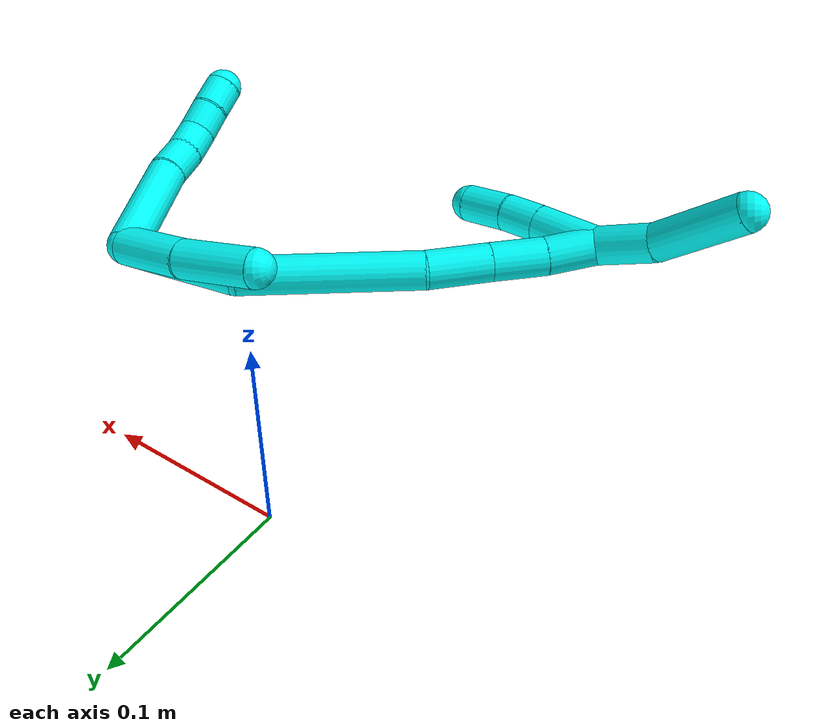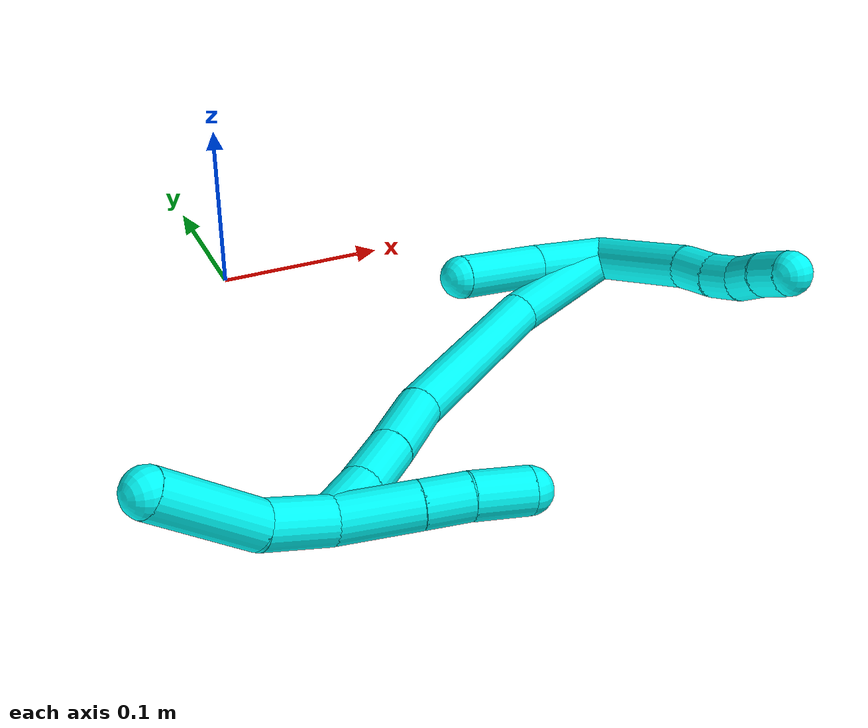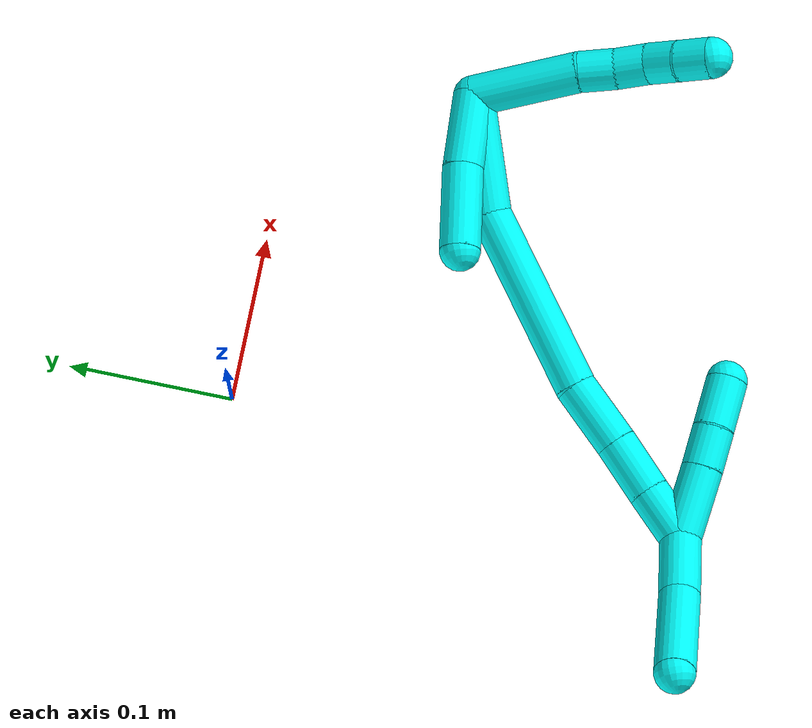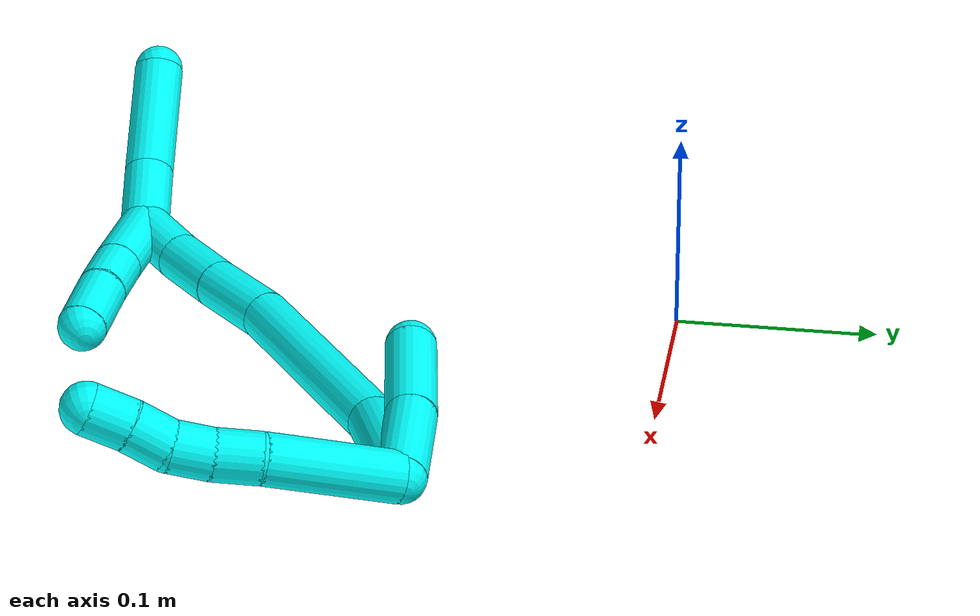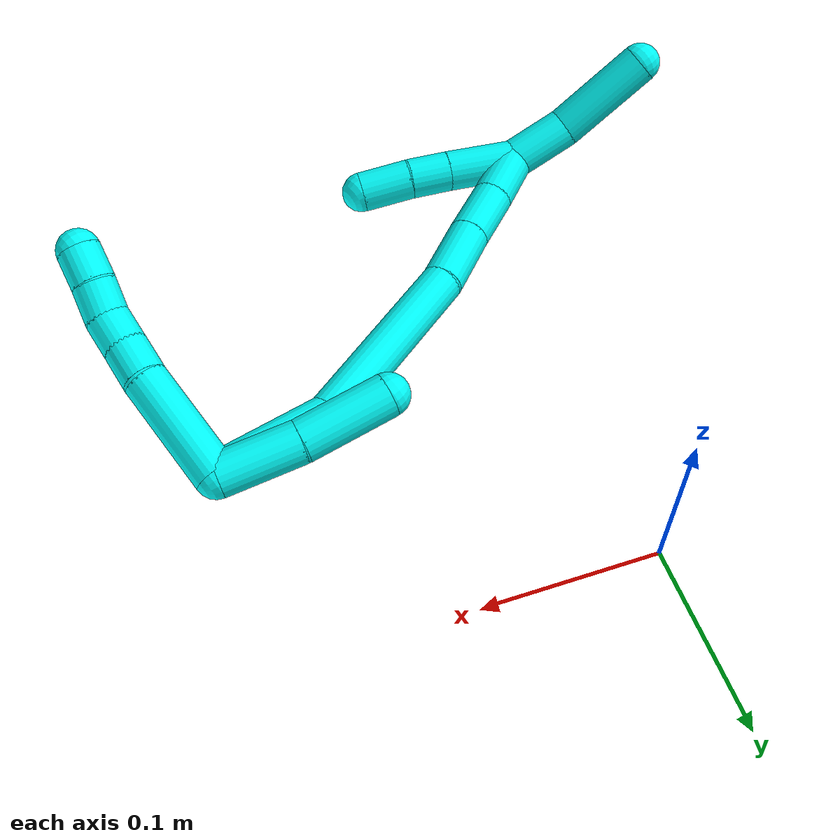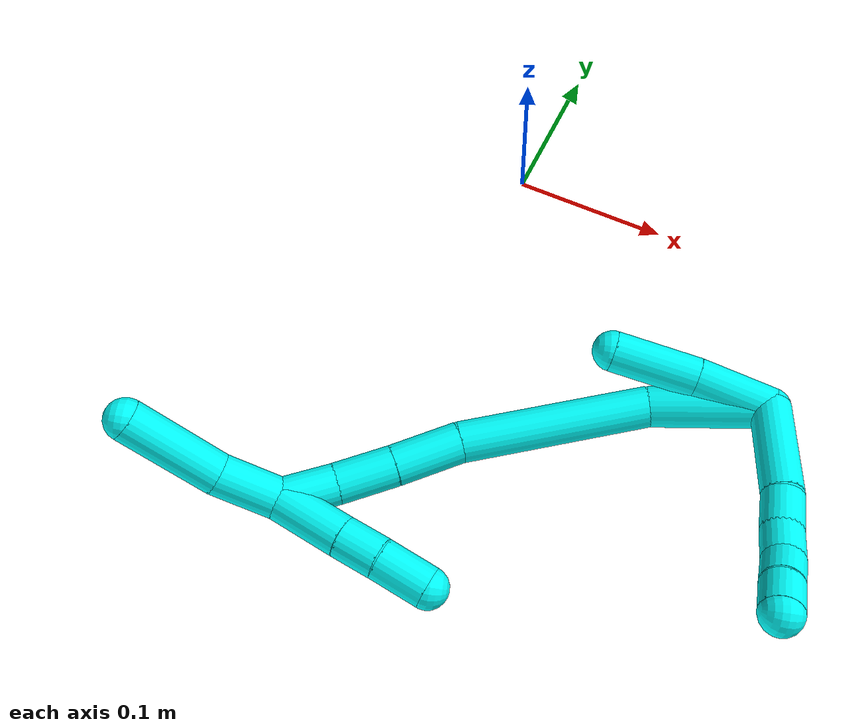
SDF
<sdf version="1.7">
 <world name="default">
  <model name="3">
   <static>0</static>
   <link name="3">
    <collision name="collision-cylinder-e_1_2_8">
     <pose>0.032982 -0.001818 0.000943 1.09223 1.50877 1.03794</pose>
     <geometry><cylinder><radius>0.0125</radius><length>0.066092</length></cylinder></geometry>
     <surface>
      <friction><ode><mu>1.16</mu><mu2>1.16</mu2><slip1>0</slip1><slip2>0</slip2></ode></friction>
      <contact><ode><kp>1e+06</kp><kd>1</kd><max_vel>0</max_vel><min_depth>0.001</min_depth></ode></contact>
     </surface>
    </collision>
    <visual name="visual-cylinder-e_1_2_8">
     <pose>0.032982 -0.001818 0.000943 1.09223 1.50877 1.03794</pose>
     <geometry><cylinder><radius>0.0125</radius><length>0.066092</length></cylinder></geometry>
     <material><ambient>0.003922 1 0.996078 1</ambient></material>
    </visual>
    <collision name="collision-cylinder-e_2_8_9">
     <pose>0.077012 -0.005782 0.003222 1.0141 1.34597 0.833697</pose>
     <geometry><cylinder><radius>0.0125</radius><length>0.022666</length></cylinder></geometry>
     <surface>
      <friction><ode><mu>1.16</mu><mu2>1.16</mu2><slip1>0</slip1><slip2>0</slip2></ode></friction>
      <contact><ode><kp>1e+06</kp><kd>1</kd><max_vel>0</max_vel><min_depth>0.001</min_depth></ode></contact>
     </surface>
    </collision>
    <visual name="visual-cylinder-e_2_8_9">
     <pose>0.077012 -0.005782 0.003222 1.0141 1.34597 0.833697</pose>
     <geometry><cylinder><radius>0.0125</radius><length>0.022666</length></cylinder></geometry>
     <material><ambient>0.003922 1 0.996078 1</ambient></material>
    </visual>
    <collision name="collision-cylinder-e_3_9_10">
     <pose>0.098155 -0.008331 0.005646 0.355131 1.4562 0.317281</pose>
     <geometry><cylinder><radius>0.0125</radius><length>0.020324</length></cylinder></geometry>
     <surface>
      <friction><ode><mu>1.16</mu><mu2>1.16</mu2><slip1>0</slip1><slip2>0</slip2></ode></friction>
      <contact><ode><kp>1e+06</kp><kd>1</kd><max_vel>0</max_vel><min_depth>0.001</min_depth></ode></contact>
     </surface>
    </collision>
    <visual name="visual-cylinder-e_3_9_10">
     <pose>0.098155 -0.008331 0.005646 0.355131 1.4562 0.317281</pose>
     <geometry><cylinder><radius>0.0125</radius><length>0.020324</length></cylinder></geometry>
     <material><ambient>0.003922 1 0.996078 1</ambient></material>
    </visual>
    <collision name="collision-cylinder-e_4_10_11">
     <pose>0.117758 -0.00684 0.00939 -0.619847 1.2403 -0.449664</pose>
     <geometry><cylinder><radius>0.0125</radius><length>0.020102</length></cylinder></geometry>
     <surface>
      <friction><ode><mu>1.16</mu><mu2>1.16</mu2><slip1>0</slip1><slip2>0</slip2></ode></friction>
      <contact><ode><kp>1e+06</kp><kd>1</kd><max_vel>0</max_vel><min_depth>0.001</min_depth></ode></contact>
     </surface>
    </collision>
    <visual name="visual-cylinder-e_4_10_11">
     <pose>0.117758 -0.00684 0.00939 -0.619847 1.2403 -0.449664</pose>
     <geometry><cylinder><radius>0.0125</radius><length>0.020102</length></cylinder></geometry>
     <material><ambient>0.003922 1 0.996078 1</ambient></material>
    </visual>
    <collision name="collision-cylinder-e_5_11_6">
     <pose>0.137368 -0.003937 0.014334 -0.415122 1.32813 -0.326701</pose>
     <geometry><cylinder><radius>0.0125</radius><length>0.020817</length></cylinder></geometry>
     <surface>
      <friction><ode><mu>1.16</mu><mu2>1.16</mu2><slip1>0</slip1><slip2>0</slip2></ode></friction>
      <contact><ode><kp>1e+06</kp><kd>1</kd><max_vel>0</max_vel><min_depth>0.001</min_depth></ode></contact>
     </surface>
    </collision>
    <visual name="visual-cylinder-e_5_11_6">
     <pose>0.137368 -0.003937 0.014334 -0.415122 1.32813 -0.326701</pose>
     <geometry><cylinder><radius>0.0125</radius><length>0.020817</length></cylinder></geometry>
     <material><ambient>0.003922 1 0.996078 1</ambient></material>
    </visual>
    <collision name="collision-cylinder-e_1_2_12">
     <pose>-0.006569 0.001173 0.022726 -0.051575 -0.281016 0.007296</pose>
     <geometry><cylinder><radius>0.0125</radius><length>0.04737</length></cylinder></geometry>
     <surface>
      <friction><ode><mu>1.16</mu><mu2>1.16</mu2><slip1>0</slip1><slip2>0</slip2></ode></friction>
      <contact><ode><kp>1e+06</kp><kd>1</kd><max_vel>0</max_vel><min_depth>0.001</min_depth></ode></contact>
     </surface>
    </collision>
    <visual name="visual-cylinder-e_1_2_12">
     <pose>-0.006569 0.001173 0.022726 -0.051575 -0.281016 0.007296</pose>
     <geometry><cylinder><radius>0.0125</radius><length>0.04737</length></cylinder></geometry>
     <material><ambient>0.003922 1 0.996078 1</ambient></material>
    </visual>
    <collision name="collision-cylinder-e_2_12_5">
     <pose>-0.017706 0.003368 0.071347 -0.039444 -0.174494 0.003451</pose>
     <geometry><cylinder><radius>0.0125</radius><length>0.05263</length></cylinder></geometry>
     <surface>
      <friction><ode><mu>1.16</mu><mu2>1.16</mu2><slip1>0</slip1><slip2>0</slip2></ode></friction>
      <contact><ode><kp>1e+06</kp><kd>1</kd><max_vel>0</max_vel><min_depth>0.001</min_depth></ode></contact>
     </surface>
    </collision>
    <visual name="visual-cylinder-e_2_12_5">
     <pose>-0.017706 0.003368 0.071347 -0.039444 -0.174494 0.003451</pose>
     <geometry><cylinder><radius>0.0125</radius><length>0.05263</length></cylinder></geometry>
     <material><ambient>0.003922 1 0.996078 1</ambient></material>
    </visual>
    <collision name="collision-cylinder-e_1_2_13">
     <pose>-0.003539 -0.010922 0.034473 0.306814 -0.097561 -0.015097</pose>
     <geometry><cylinder><radius>0.0125</radius><length>0.072668</length></cylinder></geometry>
     <surface>
      <friction><ode><mu>1.16</mu><mu2>1.16</mu2><slip1>0</slip1><slip2>0</slip2></ode></friction>
      <contact><ode><kp>1e+06</kp><kd>1</kd><max_vel>0</max_vel><min_depth>0.001</min_depth></ode></contact>
     </surface>
    </collision>
    <visual name="visual-cylinder-e_1_2_13">
     <pose>-0.003539 -0.010922 0.034473 0.306814 -0.097561 -0.015097</pose>
     <geometry><cylinder><radius>0.0125</radius><length>0.072668</length></cylinder></geometry>
     <material><ambient>0.003922 1 0.996078 1</ambient></material>
    </visual>
    <collision name="collision-cylinder-e_2_13_14">
     <pose>0.00644 -0.036147 0.123973 0.25431 0.233435 0.029978</pose>
     <geometry><cylinder><radius>0.0125</radius><length>0.116883</length></cylinder></geometry>
     <surface>
      <friction><ode><mu>1.16</mu><mu2>1.16</mu2><slip1>0</slip1><slip2>0</slip2></ode></friction>
      <contact><ode><kp>1e+06</kp><kd>1</kd><max_vel>0</max_vel><min_depth>0.001</min_depth></ode></contact>
     </surface>
    </collision>
    <visual name="visual-cylinder-e_2_13_14">
     <pose>0.00644 -0.036147 0.123973 0.25431 0.233435 0.029978</pose>
     <geometry><cylinder><radius>0.0125</radius><length>0.116883</length></cylinder></geometry>
     <material><ambient>0.003922 1 0.996078 1</ambient></material>
    </visual>
    <collision name="collision-cylinder-e_3_14_15">
     <pose>0.02785 -0.056363 0.197231 0.31362 0.390559 0.062527</pose>
     <geometry><cylinder><radius>0.0125</radius><length>0.041451</length></cylinder></geometry>
     <surface>
      <friction><ode><mu>1.16</mu><mu2>1.16</mu2><slip1>0</slip1><slip2>0</slip2></ode></friction>
      <contact><ode><kp>1e+06</kp><kd>1</kd><max_vel>0</max_vel><min_depth>0.001</min_depth></ode></contact>
     </surface>
    </collision>
    <visual name="visual-cylinder-e_3_14_15">
     <pose>0.02785 -0.056363 0.197231 0.31362 0.390559 0.062527</pose>
     <geometry><cylinder><radius>0.0125</radius><length>0.041451</length></cylinder></geometry>
     <material><ambient>0.003922 1 0.996078 1</ambient></material>
    </visual>
    <collision name="collision-cylinder-e_4_15_16">
     <pose>0.041991 -0.067063 0.231452 0.290897 0.35832 0.053044</pose>
     <geometry><cylinder><radius>0.0125</radius><length>0.035648</length></cylinder></geometry>
     <surface>
      <friction><ode><mu>1.16</mu><mu2>1.16</mu2><slip1>0</slip1><slip2>0</slip2></ode></friction>
      <contact><ode><kp>1e+06</kp><kd>1</kd><max_vel>0</max_vel><min_depth>0.001</min_depth></ode></contact>
     </surface>
    </collision>
    <visual name="visual-cylinder-e_4_15_16">
     <pose>0.041991 -0.067063 0.231452 0.290897 0.35832 0.053044</pose>
     <geometry><cylinder><radius>0.0125</radius><length>0.035648</length></cylinder></geometry>
     <material><ambient>0.003922 1 0.996078 1</ambient></material>
    </visual>
    <collision name="collision-cylinder-e_5_16_1">
     <pose>0.054684 -0.074651 0.262565 0.183095 0.396648 0.036895</pose>
     <geometry><cylinder><radius>0.0125</radius><length>0.033349</length></cylinder></geometry>
     <surface>
      <friction><ode><mu>1.16</mu><mu2>1.16</mu2><slip1>0</slip1><slip2>0</slip2></ode></friction>
      <contact><ode><kp>1e+06</kp><kd>1</kd><max_vel>0</max_vel><min_depth>0.001</min_depth></ode></contact>
     </surface>
    </collision>
    <visual name="visual-cylinder-e_5_16_1">
     <pose>0.054684 -0.074651 0.262565 0.183095 0.396648 0.036895</pose>
     <geometry><cylinder><radius>0.0125</radius><length>0.033349</length></cylinder></geometry>
     <material><ambient>0.003922 1 0.996078 1</ambient></material>
    </visual>
    <collision name="collision-cylinder-e_1_1_17">
     <pose>0.058762 -0.073471 0.296435 -0.209235 -0.122711 0.012901</pose>
     <geometry><cylinder><radius>0.0125</radius><length>0.038619</length></cylinder></geometry>
     <surface>
      <friction><ode><mu>1.16</mu><mu2>1.16</mu2><slip1>0</slip1><slip2>0</slip2></ode></friction>
      <contact><ode><kp>1e+06</kp><kd>1</kd><max_vel>0</max_vel><min_depth>0.001</min_depth></ode></contact>
     </surface>
    </collision>
    <visual name="visual-cylinder-e_1_1_17">
     <pose>0.058762 -0.073471 0.296435 -0.209235 -0.122711 0.012901</pose>
     <geometry><cylinder><radius>0.0125</radius><length>0.038619</length></cylinder></geometry>
     <material><ambient>0.003922 1 0.996078 1</ambient></material>
    </visual>
    <collision name="collision-cylinder-e_2_17_4">
     <pose>0.054858 -0.054536 0.341937 -0.509652 -0.050218 0.013084</pose>
     <geometry><cylinder><radius>0.0125</radius><length>0.061381</length></cylinder></geometry>
     <surface>
      <friction><ode><mu>1.16</mu><mu2>1.16</mu2><slip1>0</slip1><slip2>0</slip2></ode></friction>
      <contact><ode><kp>1e+06</kp><kd>1</kd><max_vel>0</max_vel><min_depth>0.001</min_depth></ode></contact>
     </surface>
    </collision>
    <visual name="visual-cylinder-e_2_17_4">
     <pose>0.054858 -0.054536 0.341937 -0.509652 -0.050218 0.013084</pose>
     <geometry><cylinder><radius>0.0125</radius><length>0.061381</length></cylinder></geometry>
     <material><ambient>0.003922 1 0.996078 1</ambient></material>
    </visual>
    <collision name="collision-cylinder-e_1_1_18">
     <pose>0.071035 -0.077814 0.258411 3.12275 0.474739 3.06376</pose>
     <geometry><cylinder><radius>0.0125</radius><length>0.043356</length></cylinder></geometry>
     <surface>
      <friction><ode><mu>1.16</mu><mu2>1.16</mu2><slip1>0</slip1><slip2>0</slip2></ode></friction>
      <contact><ode><kp>1e+06</kp><kd>1</kd><max_vel>0</max_vel><min_depth>0.001</min_depth></ode></contact>
     </surface>
    </collision>
    <visual name="visual-cylinder-e_1_1_18">
     <pose>0.071035 -0.077814 0.258411 3.12275 0.474739 3.06376</pose>
     <geometry><cylinder><radius>0.0125</radius><length>0.043356</length></cylinder></geometry>
     <material><ambient>0.003922 1 0.996078 1</ambient></material>
    </visual>
    <collision name="collision-cylinder-e_2_18_19">
     <pose>0.086329 -0.078449 0.227798 3.11765 0.443341 3.03547</pose>
     <geometry><cylinder><radius>0.0125</radius><length>0.025106</length></cylinder></geometry>
     <surface>
      <friction><ode><mu>1.16</mu><mu2>1.16</mu2><slip1>0</slip1><slip2>0</slip2></ode></friction>
      <contact><ode><kp>1e+06</kp><kd>1</kd><max_vel>0</max_vel><min_depth>0.001</min_depth></ode></contact>
     </surface>
    </collision>
    <visual name="visual-cylinder-e_2_18_19">
     <pose>0.086329 -0.078449 0.227798 3.11765 0.443341 3.03547</pose>
     <geometry><cylinder><radius>0.0125</radius><length>0.025106</length></cylinder></geometry>
     <material><ambient>0.003922 1 0.996078 1</ambient></material>
    </visual>
    <collision name="collision-cylinder-e_3_19_3">
     <pose>0.097952 -0.080406 0.202078 3.02497 0.406761 2.58991</pose>
     <geometry><cylinder><radius>0.0125</radius><length>0.031538</length></cylinder></geometry>
     <surface>
      <friction><ode><mu>1.16</mu><mu2>1.16</mu2><slip1>0</slip1><slip2>0</slip2></ode></friction>
      <contact><ode><kp>1e+06</kp><kd>1</kd><max_vel>0</max_vel><min_depth>0.001</min_depth></ode></contact>
     </surface>
    </collision>
    <visual name="visual-cylinder-e_3_19_3">
     <pose>0.097952 -0.080406 0.202078 3.02497 0.406761 2.58991</pose>
     <geometry><cylinder><radius>0.0125</radius><length>0.031538</length></cylinder></geometry>
     <material><ambient>0.003922 1 0.996078 1</ambient></material>
    </visual>
    <collision name="collision-sphere-3">
     <pose>0.104191 -0.082091 0.187694 0 -0 0</pose>
     <geometry><sphere><radius>0.0125</radius></sphere></geometry>
     <surface>
      <friction><ode><mu>1.16</mu><mu2>1.16</mu2><slip1>0</slip1><slip2>0</slip2></ode></friction>
      <contact><ode><kp>1e+06</kp><kd>1</kd><max_vel>0</max_vel><min_depth>0.001</min_depth></ode></contact>
     </surface>
    </collision>
    <visual name="visual-sphere-3">
     <pose>0.104191 -0.082091 0.187694 0 -0 0</pose>
     <geometry><sphere><radius>0.0125</radius></sphere></geometry>
     <material><ambient>0.003922 1 0.996078 1</ambient></material>
    </visual>
    <collision name="collision-sphere-19">
     <pose>0.091713 -0.07872 0.216462 0 -0 0</pose>
     <geometry><sphere><radius>0.0125</radius></sphere></geometry>
     <surface>
      <friction><ode><mu>1.16</mu><mu2>1.16</mu2><slip1>0</slip1><slip2>0</slip2></ode></friction>
      <contact><ode><kp>1e+06</kp><kd>1</kd><max_vel>0</max_vel><min_depth>0.001</min_depth></ode></contact>
     </surface>
    </collision>
    <visual name="visual-sphere-19">
     <pose>0.091713 -0.07872 0.216462 0 -0 0</pose>
     <geometry><sphere><radius>0.0125</radius></sphere></geometry>
     <material><ambient>0.003922 1 0.996078 1</ambient></material>
    </visual>
    <collision name="collision-sphere-6">
     <pose>0.147471 -0.002928 0.016622 0 -0 0</pose>
     <geometry><sphere><radius>0.0125</radius></sphere></geometry>
     <surface>
      <friction><ode><mu>1.16</mu><mu2>1.16</mu2><slip1>0</slip1><slip2>0</slip2></ode></friction>
      <contact><ode><kp>1e+06</kp><kd>1</kd><max_vel>0</max_vel><min_depth>0.001</min_depth></ode></contact>
     </surface>
    </collision>
    <visual name="visual-sphere-6">
     <pose>0.147471 -0.002928 0.016622 0 -0 0</pose>
     <geometry><sphere><radius>0.0125</radius></sphere></geometry>
     <material><ambient>0.003922 1 0.996078 1</ambient></material>
    </visual>
    <collision name="collision-sphere-11">
     <pose>0.127265 -0.004945 0.012045 0 -0 0</pose>
     <geometry><sphere><radius>0.0125</radius></sphere></geometry>
     <surface>
      <friction><ode><mu>1.16</mu><mu2>1.16</mu2><slip1>0</slip1><slip2>0</slip2></ode></friction>
      <contact><ode><kp>1e+06</kp><kd>1</kd><max_vel>0</max_vel><min_depth>0.001</min_depth></ode></contact>
     </surface>
    </collision>
    <visual name="visual-sphere-11">
     <pose>0.127265 -0.004945 0.012045 0 -0 0</pose>
     <geometry><sphere><radius>0.0125</radius></sphere></geometry>
     <material><ambient>0.003922 1 0.996078 1</ambient></material>
    </visual>
    <collision name="collision-sphere-10">
     <pose>0.108251 -0.008735 0.006736 0 -0 0</pose>
     <geometry><sphere><radius>0.0125</radius></sphere></geometry>
     <surface>
      <friction><ode><mu>1.16</mu><mu2>1.16</mu2><slip1>0</slip1><slip2>0</slip2></ode></friction>
      <contact><ode><kp>1e+06</kp><kd>1</kd><max_vel>0</max_vel><min_depth>0.001</min_depth></ode></contact>
     </surface>
    </collision>
    <visual name="visual-sphere-10">
     <pose>0.108251 -0.008735 0.006736 0 -0 0</pose>
     <geometry><sphere><radius>0.0125</radius></sphere></geometry>
     <material><ambient>0.003922 1 0.996078 1</ambient></material>
    </visual>
    <collision name="collision-sphere-9">
     <pose>0.08806 -0.007927 0.004557 0 -0 0</pose>
     <geometry><sphere><radius>0.0125</radius></sphere></geometry>
     <surface>
      <friction><ode><mu>1.16</mu><mu2>1.16</mu2><slip1>0</slip1><slip2>0</slip2></ode></friction>
      <contact><ode><kp>1e+06</kp><kd>1</kd><max_vel>0</max_vel><min_depth>0.001</min_depth></ode></contact>
     </surface>
    </collision>
    <visual name="visual-sphere-9">
     <pose>0.08806 -0.007927 0.004557 0 -0 0</pose>
     <geometry><sphere><radius>0.0125</radius></sphere></geometry>
     <material><ambient>0.003922 1 0.996078 1</ambient></material>
    </visual>
    <collision name="collision-sphere-2">
     <geometry><sphere><radius>0.0125</radius></sphere></geometry>
     <surface>
      <friction><ode><mu>1.16</mu><mu2>1.16</mu2><slip1>0</slip1><slip2>0</slip2></ode></friction>
      <contact><ode><kp>1e+06</kp><kd>1</kd><max_vel>0</max_vel><min_depth>0.001</min_depth></ode></contact>
     </surface>
    </collision>
    <visual name="visual-sphere-2">
     <geometry><sphere><radius>0.0125</radius></sphere></geometry>
     <material><ambient>0.003922 1 0.996078 1</ambient></material>
    </visual>
    <collision name="collision-sphere-8">
     <pose>0.065965 -0.003637 0.001887 0 -0 0</pose>
     <geometry><sphere><radius>0.0125</radius></sphere></geometry>
     <surface>
      <friction><ode><mu>1.16</mu><mu2>1.16</mu2><slip1>0</slip1><slip2>0</slip2></ode></friction>
      <contact><ode><kp>1e+06</kp><kd>1</kd><max_vel>0</max_vel><min_depth>0.001</min_depth></ode></contact>
     </surface>
    </collision>
    <visual name="visual-sphere-8">
     <pose>0.065965 -0.003637 0.001887 0 -0 0</pose>
     <geometry><sphere><radius>0.0125</radius></sphere></geometry>
     <material><ambient>0.003922 1 0.996078 1</ambient></material>
    </visual>
    <collision name="collision-sphere-12">
     <pose>-0.013137 0.002346 0.045451 0 -0 0</pose>
     <geometry><sphere><radius>0.0125</radius></sphere></geometry>
     <surface>
      <friction><ode><mu>1.16</mu><mu2>1.16</mu2><slip1>0</slip1><slip2>0</slip2></ode></friction>
      <contact><ode><kp>1e+06</kp><kd>1</kd><max_vel>0</max_vel><min_depth>0.001</min_depth></ode></contact>
     </surface>
    </collision>
    <visual name="visual-sphere-12">
     <pose>-0.013137 0.002346 0.045451 0 -0 0</pose>
     <geometry><sphere><radius>0.0125</radius></sphere></geometry>
     <material><ambient>0.003922 1 0.996078 1</ambient></material>
    </visual>
    <collision name="collision-sphere-5">
     <pose>-0.022274 0.00439 0.097242 0 -0 0</pose>
     <geometry><sphere><radius>0.0125</radius></sphere></geometry>
     <surface>
      <friction><ode><mu>1.16</mu><mu2>1.16</mu2><slip1>0</slip1><slip2>0</slip2></ode></friction>
      <contact><ode><kp>1e+06</kp><kd>1</kd><max_vel>0</max_vel><min_depth>0.001</min_depth></ode></contact>
     </surface>
    </collision>
    <visual name="visual-sphere-5">
     <pose>-0.022274 0.00439 0.097242 0 -0 0</pose>
     <geometry><sphere><radius>0.0125</radius></sphere></geometry>
     <material><ambient>0.003922 1 0.996078 1</ambient></material>
    </visual>
    <collision name="collision-sphere-13">
     <pose>-0.007078 -0.021843 0.068945 0 -0 0</pose>
     <geometry><sphere><radius>0.0125</radius></sphere></geometry>
     <surface>
      <friction><ode><mu>1.16</mu><mu2>1.16</mu2><slip1>0</slip1><slip2>0</slip2></ode></friction>
      <contact><ode><kp>1e+06</kp><kd>1</kd><max_vel>0</max_vel><min_depth>0.001</min_depth></ode></contact>
     </surface>
    </collision>
    <visual name="visual-sphere-13">
     <pose>-0.007078 -0.021843 0.068945 0 -0 0</pose>
     <geometry><sphere><radius>0.0125</radius></sphere></geometry>
     <material><ambient>0.003922 1 0.996078 1</ambient></material>
    </visual>
    <collision name="collision-sphere-14">
     <pose>0.019959 -0.050451 0.179001 0 -0 0</pose>
     <geometry><sphere><radius>0.0125</radius></sphere></geometry>
     <surface>
      <friction><ode><mu>1.16</mu><mu2>1.16</mu2><slip1>0</slip1><slip2>0</slip2></ode></friction>
      <contact><ode><kp>1e+06</kp><kd>1</kd><max_vel>0</max_vel><min_depth>0.001</min_depth></ode></contact>
     </surface>
    </collision>
    <visual name="visual-sphere-14">
     <pose>0.019959 -0.050451 0.179001 0 -0 0</pose>
     <geometry><sphere><radius>0.0125</radius></sphere></geometry>
     <material><ambient>0.003922 1 0.996078 1</ambient></material>
    </visual>
    <collision name="collision-sphere-15">
     <pose>0.03574 -0.062276 0.215461 0 -0 0</pose>
     <geometry><sphere><radius>0.0125</radius></sphere></geometry>
     <surface>
      <friction><ode><mu>1.16</mu><mu2>1.16</mu2><slip1>0</slip1><slip2>0</slip2></ode></friction>
      <contact><ode><kp>1e+06</kp><kd>1</kd><max_vel>0</max_vel><min_depth>0.001</min_depth></ode></contact>
     </surface>
    </collision>
    <visual name="visual-sphere-15">
     <pose>0.03574 -0.062276 0.215461 0 -0 0</pose>
     <geometry><sphere><radius>0.0125</radius></sphere></geometry>
     <material><ambient>0.003922 1 0.996078 1</ambient></material>
    </visual>
    <collision name="collision-sphere-16">
     <pose>0.048242 -0.071851 0.247442 0 -0 0</pose>
     <geometry><sphere><radius>0.0125</radius></sphere></geometry>
     <surface>
      <friction><ode><mu>1.16</mu><mu2>1.16</mu2><slip1>0</slip1><slip2>0</slip2></ode></friction>
      <contact><ode><kp>1e+06</kp><kd>1</kd><max_vel>0</max_vel><min_depth>0.001</min_depth></ode></contact>
     </surface>
    </collision>
    <visual name="visual-sphere-16">
     <pose>0.048242 -0.071851 0.247442 0 -0 0</pose>
     <geometry><sphere><radius>0.0125</radius></sphere></geometry>
     <material><ambient>0.003922 1 0.996078 1</ambient></material>
    </visual>
    <collision name="collision-sphere-1">
     <pose>0.061126 -0.077451 0.277688 0 -0 0</pose>
     <geometry><sphere><radius>0.0125</radius></sphere></geometry>
     <surface>
      <friction><ode><mu>1.16</mu><mu2>1.16</mu2><slip1>0</slip1><slip2>0</slip2></ode></friction>
      <contact><ode><kp>1e+06</kp><kd>1</kd><max_vel>0</max_vel><min_depth>0.001</min_depth></ode></contact>
     </surface>
    </collision>
    <visual name="visual-sphere-1">
     <pose>0.061126 -0.077451 0.277688 0 -0 0</pose>
     <geometry><sphere><radius>0.0125</radius></sphere></geometry>
     <material><ambient>0.003922 1 0.996078 1</ambient></material>
    </visual>
    <collision name="collision-sphere-18">
     <pose>0.080944 -0.078178 0.239134 0 -0 0</pose>
     <geometry><sphere><radius>0.0125</radius></sphere></geometry>
     <surface>
      <friction><ode><mu>1.16</mu><mu2>1.16</mu2><slip1>0</slip1><slip2>0</slip2></ode></friction>
      <contact><ode><kp>1e+06</kp><kd>1</kd><max_vel>0</max_vel><min_depth>0.001</min_depth></ode></contact>
     </surface>
    </collision>
    <visual name="visual-sphere-18">
     <pose>0.080944 -0.078178 0.239134 0 -0 0</pose>
     <geometry><sphere><radius>0.0125</radius></sphere></geometry>
     <material><ambient>0.003922 1 0.996078 1</ambient></material>
    </visual>
    <collision name="collision-sphere-17">
     <pose>0.056399 -0.06949 0.315181 0 -0 0</pose>
     <geometry><sphere><radius>0.0125</radius></sphere></geometry>
     <surface>
      <friction><ode><mu>1.16</mu><mu2>1.16</mu2><slip1>0</slip1><slip2>0</slip2></ode></friction>
      <contact><ode><kp>1e+06</kp><kd>1</kd><max_vel>0</max_vel><min_depth>0.001</min_depth></ode></contact>
     </surface>
    </collision>
    <visual name="visual-sphere-17">
     <pose>0.056399 -0.06949 0.315181 0 -0 0</pose>
     <geometry><sphere><radius>0.0125</radius></sphere></geometry>
     <material><ambient>0.003922 1 0.996078 1</ambient></material>
    </visual>
    <collision name="collision-sphere-4">
     <pose>0.053317 -0.039581 0.368694 0 -0 0</pose>
     <geometry><sphere><radius>0.0125</radius></sphere></geometry>
     <surface>
      <friction><ode><mu>1.16</mu><mu2>1.16</mu2><slip1>0</slip1><slip2>0</slip2></ode></friction>
      <contact><ode><kp>1e+06</kp><kd>1</kd><max_vel>0</max_vel><min_depth>0.001</min_depth></ode></contact>
     </surface>
    </collision>
    <visual name="visual-sphere-4">
     <pose>0.053317 -0.039581 0.368694 0 -0 0</pose>
     <geometry><sphere><radius>0.0125</radius></sphere></geometry>
     <material><ambient>0.003922 1 0.996078 1</ambient></material>
    </visual>
    <inertial>
     <pose>0.038463 -0.035608 0.137972 0 -0 0</pose>
     <mass>0.75</mass>
     <inertia><ixx>0.000252</ixx><ixy>0</ixy><ixz>0</ixz><iyy>0.000286</iyy><iyz>0</iyz><izz>2e-06</izz></inertia>
    </inertial>
   </link>
   <pose>0.20771 -0.105309 0.022028 1.38725 -0.323467 -1.168</pose>
  </model>
 </world>
</sdf>
